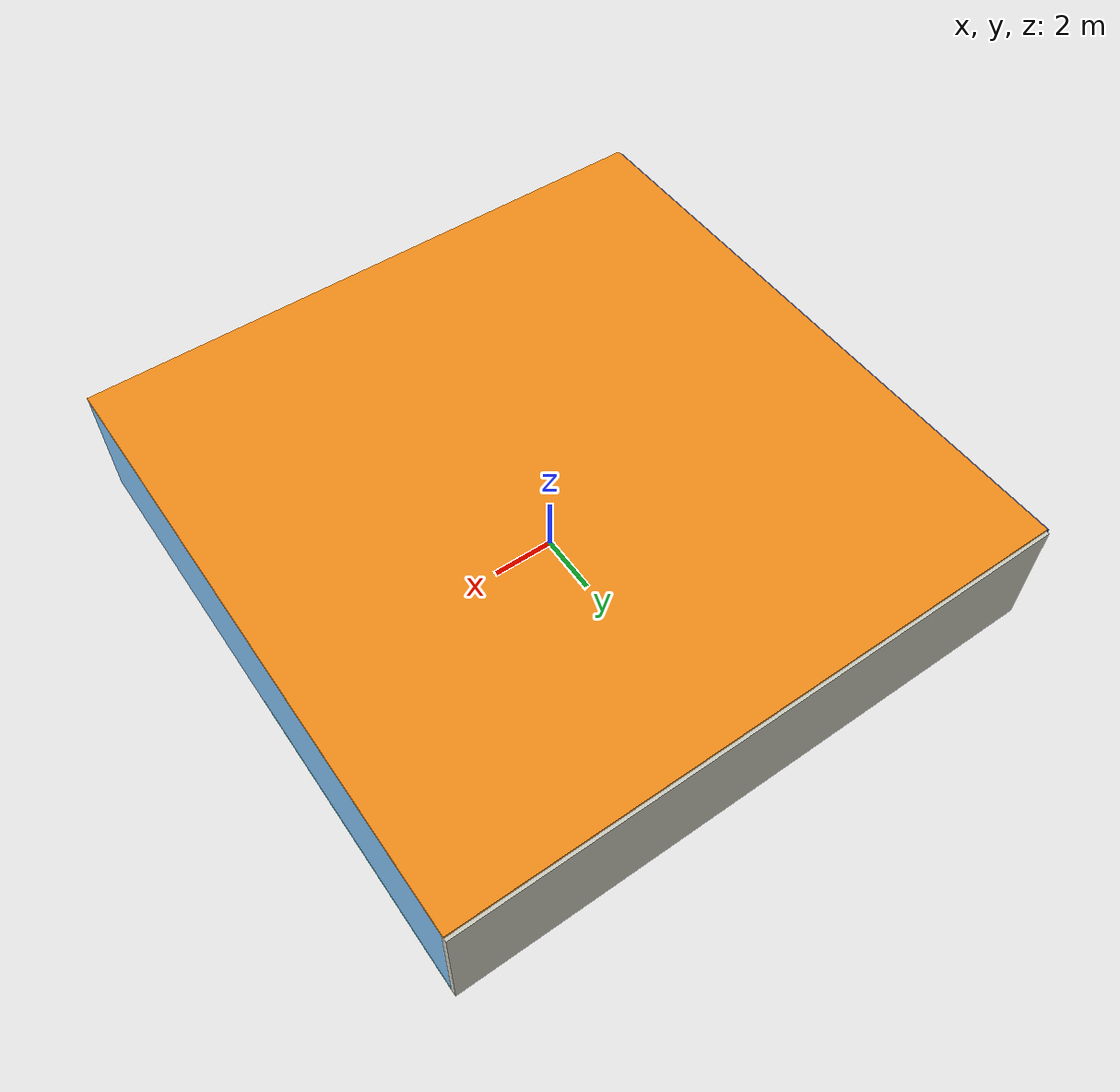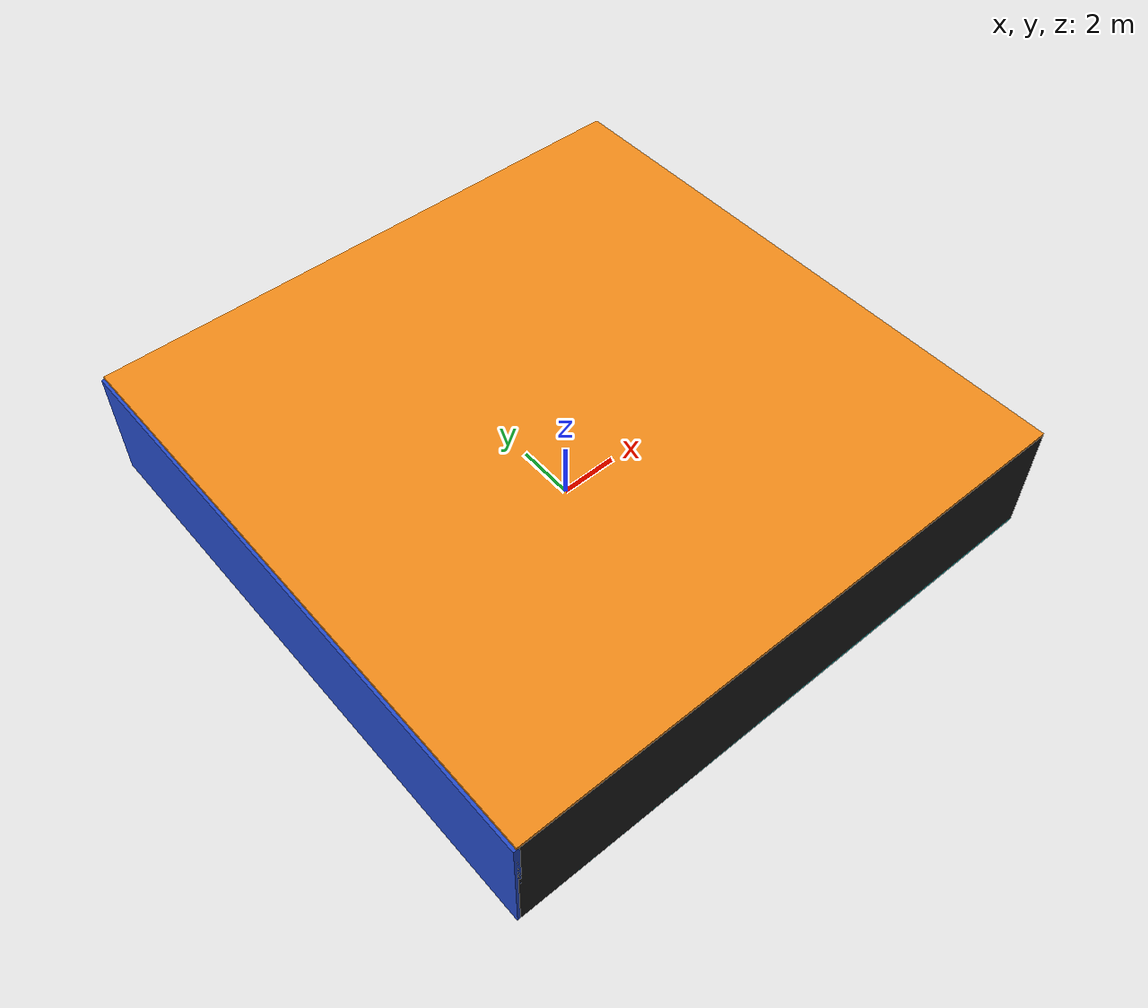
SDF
<sdf version="1.4">
 <world name="default">
  <physics type="ode">
   <max_step_size>0.001</max_step_size>
   <real_time_factor>1</real_time_factor>
   <real_time_update_rate>1000</real_time_update_rate>
   <gravity>0 0 -9.8</gravity>
  </physics>
  <scene><ambient>0.4 0.4 0.4 1</ambient><background>0.7 0.7 0.7 1</background><shadows>1</shadows></scene>
  <model name="Surrounding">
   <static>1</static>
   <link name="Ceiling">
    <collision name="Ceiling_Collision"><geometry><box><size>20 20 0.1</size></box></geometry></collision>
    <visual name="Ceiling_Visual">
     <geometry><box><size>20 20 0.1</size></box></geometry>
     <material>
      <script><uri>file://media/materials/scripts/gazebo.material</uri><name>Gazebo/Orange</name></script>
     </material>
    </visual>
    <pose>0 0 4.05 0 0 0</pose>
   </link>
   <link name="Wall_South">
    <collision name="Wall_South_Collision">
     <geometry><box><size>20 0 4</size></box></geometry>
     <pose>0 0 2 0 -0 0</pose>
    </collision>
    <visual name="Wall_South_Visual">
     <pose>0 0 2 0 -0 0</pose>
     <geometry><box><size>20 0 4</size></box></geometry>
     <material>
      <script><uri>file://media/materials/scripts/gazebo.material</uri><name>Gazebo/Black</name></script>
     </material>
    </visual>
    <velocity_decay><linear>0</linear><angular>0</angular></velocity_decay>
    <pose>0 -10 0 0 -0 0</pose>
   </link>
   <link name="Wall_East">
    <collision name="Wall_21_Collision">
     <geometry><box><size>20 0 4</size></box></geometry>
     <pose>0 0 2 0 -0 0</pose>
    </collision>
    <visual name="Wall_21_Visual">
     <pose>0 0 2 0 -0 0</pose>
     <geometry><box><size>20 0 4</size></box></geometry>
     <material>
      <script><uri>file://media/materials/scripts/gazebo.material</uri><name>Gazebo/SkyBlue</name></script>
     </material>
    </visual>
    <velocity_decay><linear>0</linear><angular>0</angular></velocity_decay>
    <pose>10 0 0 0 -0 1.5708</pose>
   </link>
   <link name="Wall_North">
    <collision name="Wall_22_Collision">
     <geometry><box><size>20 0.2 4</size></box></geometry>
     <pose>0 0 2 0 -0 0</pose>
    </collision>
    <visual name="Wall_22_Visual">
     <pose>0 0 2 0 -0 0</pose>
     <geometry><box><size>20 0.2 4</size></box></geometry>
     <material>
      <script><uri>file://media/materials/scripts/gazebo.material</uri><name>Gazebo/PaintedWall</name></script>
     </material>
    </visual>
    <velocity_decay><linear>0</linear><angular>0</angular></velocity_decay>
    <pose>0 10 0 0 -0 0</pose>
   </link>
   <link name="Wall_West">
    <collision name="Wall_23_Collision">
     <geometry><box><size>20 0.2 4</size></box></geometry>
     <pose>0 0 2 0 -0 0</pose>
    </collision>
    <visual name="Wall_23_Visual">
     <pose>0 0 2 0 -0 0</pose>
     <geometry><box><size>20 0.2 4</size></box></geometry>
     <material>
      <script><uri>file://media/materials/scripts/gazebo.material</uri><name>Gazebo/BlueGlow</name></script>
     </material>
    </visual>
    <velocity_decay><linear>0</linear><angular>0</angular></velocity_decay>
    <pose>-10 0 0 0 0 -1.5708</pose>
   </link>
   <link name="Ground_link">
    <collision name="collision">
     <pose>0 0 .05 0 -0 0</pose>
     <geometry><box><size>20 20 0.1</size></box></geometry>
    </collision>
    <visual name="visual">
     <pose>0 0 .05 0 -0 0</pose>
     <geometry><box><size>20 20 0.1</size></box></geometry>
     <material>
      <script><uri>file://media/materials/scripts/gazebo.material</uri><name>Gazebo/Turquoise</name></script>
     </material>
    </visual>
   </link>
   <static>1</static>
  </model>
  <spherical_coordinates>
   <surface_model>EARTH_WGS84</surface_model>
   <latitude_deg>0</latitude_deg>
   <longitude_deg>0</longitude_deg>
   <elevation>0</elevation>
   <heading_deg>0</heading_deg>
  </spherical_coordinates>
  <light name="lightball_0" type="diffuse">
   <diffuse>0.8 0.8 0.8 1</diffuse>
   <specular>0.2 0.2 0.2 1</specular>
   <attenuation>
    <range>100</range>
    <constant>0.7</constant>
    <linear>0.01</linear>
    <quadratic>0.001</quadratic>
   </attenuation>
   <direction>-0.5 0.1 -0.9</direction>
   <pose>3.94942024705 0.843780424483 2.60389240616 0 0 0</pose>
  </light>
  <light name="lightball_1" type="diffuse">
   <diffuse>0.8 0.8 0.8 1</diffuse>
   <specular>0.2 0.2 0.2 1</specular>
   <attenuation>
    <range>100</range>
    <constant>0.7</constant>
    <linear>0.01</linear>
    <quadratic>0.001</quadratic>
   </attenuation>
   <direction>-0.5 0.1 -0.9</direction>
   <pose>1.18135409617 9.30346712592 3.5653873477 0 0 0</pose>
  </light>
  <light name="lightball_2" type="diffuse">
   <diffuse>0.8 0.8 0.8 1</diffuse>
   <specular>0.2 0.2 0.2 1</specular>
   <attenuation>
    <range>100</range>
    <constant>0.7</constant>
    <linear>0.01</linear>
    <quadratic>0.001</quadratic>
   </attenuation>
   <direction>-0.5 0.1 -0.9</direction>
   <pose>-3.01218851696 2.32836507985 3.10360788097 0 0 0</pose>
  </light>
  <light name="lightball_3" type="diffuse">
   <diffuse>0.8 0.8 0.8 1</diffuse>
   <specular>0.2 0.2 0.2 1</specular>
   <attenuation>
    <range>100</range>
    <constant>0.7</constant>
    <linear>0.01</linear>
    <quadratic>0.001</quadratic>
   </attenuation>
   <direction>-0.5 0.1 -0.9</direction>
   <pose>6.60615883165 4.71778728015 1.680434753 0 0 0</pose>
  </light>
  <light name="lightball_4" type="diffuse">
   <diffuse>0.8 0.8 0.8 1</diffuse>
   <specular>0.2 0.2 0.2 1</specular>
   <attenuation>
    <range>100</range>
    <constant>0.7</constant>
    <linear>0.01</linear>
    <quadratic>0.001</quadratic>
   </attenuation>
   <direction>-0.5 0.1 -0.9</direction>
   <pose>0.640542493779 2.71147340489 2.73707091856 0 0 0</pose>
  </light>
  <include><uri>model://cabinet</uri><pose>-8.32126642383 -4.74574540738 0 0 0 2.74710320343</pose></include>
  <include><uri>model://cabinet</uri><pose>-5.02179907271 2.69657294078 0 0 0 1.36124764233</pose></include>
  <include><uri>model://cabinet</uri><pose>5.11318849312 -4.21869344114 0 0 0 2.9098738949</pose></include>
  <include>
   <uri>model://textured_shapes</uri>
   <pose>4.51197725847 1.60580554051 0 0 0 1.75551253628</pose>
  </include>
  <include>
   <uri>model://robocup_3Dsim_goal</uri>
   <pose>4.58753473394 3.67283684551 0 0 0 0.0117633174683</pose>
  </include>
 </world>
</sdf>

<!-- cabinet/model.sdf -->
<sdf version="1.5">
  <model name="cabinet">
    <static>true</static>
    <link name="cabinet_bottom_plate">
      <inertial>
        <pose>0 0 -1 0 0 0</pose>
        <inertia>
          <ixx>2.050000</ixx>
          <ixy>0</ixy>
          <ixz>0</ixz>
          <iyy>2.050000</iyy>
          <iyz>0</iyz>
          <izz>2.050000</izz>
        </inertia>
        <mass>25.000000</mass>
      </inertial>
      <collision name="cabinet_bottom_plate_geom">
        <pose>0 0 0.010000 0 0 0</pose>
        <geometry>
          <box>
            <size>0.450000 0.450000 0.020000</size>
          </box>
        </geometry>
      </collision>
      <visual name="cabinet_bottom_plate_geom_visual">
        <pose>0 0 0.010000 0 0 0</pose>
        <geometry>
          <box>
            <size>0.450000 0.450000 0.020000</size>
          </box>
        </geometry>
        <material>
          <script>
            <uri>model://media/materials/scripts/gazebo.material</uri>
            <name>Gazebo/Wood</name>
          </script>
        </material>
      </visual>
      <collision name="cabinet_bottom_plate_geom_cabinet_back_plate">
        <pose>0.235000 0 0.510000 0 0 0</pose>
        <geometry>
          <box>
            <size>0.020000 0.450000 1.020000</size>
          </box>
        </geometry>
      </collision>
      <visual name="cabinet_bottom_plate_geom_cabinet_back_plate_visual">
        <pose>0.235000 0 0.510000 0 0 0</pose>
        <geometry>
          <box>
            <size>0.020000 0.450000 1.020000</size>
          </box>
        </geometry>
        <material>
          <script>
            <uri>model://media/materials/scripts/gazebo.material</uri>
            <name>Gazebo/Wood</name>
          </script>
        </material>
      </visual>
      <collision name="cabinet_bottom_plate_geom_cabinet_left_plate">
        <pose>0 0.235000 0.510000 0 0 0</pose>
        <geometry>
          <box>
            <size>0.450000 0.020000 1.020000</size>
          </box>
        </geometry>
      </collision>
      <visual name="cabinet_bottom_plate_geom_cabinet_left_plate_visual">
        <pose>0 0.235000 0.510000 0 0 0</pose>
        <geometry>
          <box>
            <size>0.450000 0.020000 1.020000</size>
          </box>
        </geometry>
        <material>
          <script>
            <uri>model://media/materials/scripts/gazebo.material</uri>
            <name>Gazebo/Wood</name>
          </script>
        </material>
      </visual>
      <collision name="cabinet_bottom_plate_geom_cabinet_middle_plate">
        <pose>0 0 0.510000 0 0 0</pose>
        <geometry>
          <box>
            <size>0.450000 0.450000 0.020000</size>
          </box>
        </geometry>
      </collision>
      <visual name="cabinet_bottom_plate_geom_cabinet_middle_plate_visual">
        <pose>0 0 0.510000 0 0 0</pose>
        <geometry>
          <box>
            <size>0.450000 0.450000 0.020000</size>
          </box>
        </geometry>
        <material>
          <script>
            <uri>model://media/materials/scripts/gazebo.material</uri>
            <name>Gazebo/Wood</name>
          </script>
        </material>
      </visual>
      <collision name="cabinet_bottom_plate_geom_cabinet_right_plate">
        <pose>0 -0.235000 0.510000 0 0 0</pose>
        <geometry>
          <box>
            <size>0.450000 0.020000 1.020000</size>
          </box>
        </geometry>
      </collision>
      <visual name="cabinet_bottom_plate_geom_cabinet_right_plate_visual">
        <pose>0 -0.235000 0.510000 0 0 0</pose>
        <geometry>
          <box>
            <size>0.450000 0.020000 1.020000</size>
          </box>
        </geometry>
        <material>
          <script>
            <uri>model://media/materials/scripts/gazebo.material</uri>
            <name>Gazebo/Wood</name>
          </script>
        </material>
      </visual>
      <collision name="cabinet_bottom_plate_geom_cabinet_top_plate">
        <pose>0 0 1.010000 0 0 0</pose>
        <geometry>
          <box>
            <size>0.450000 0.450000 0.020000</size>
          </box>
        </geometry>
      </collision>
      <visual name="cabinet_bottom_plate_geom_cabinet_top_plate_visual">
        <pose>0 0 1.010000 0 0 0</pose>
        <geometry>
          <box>
            <size>0.450000 0.450000 0.020000</size>
          </box>
        </geometry>
        <material>
          <script>
            <uri>model://media/materials/scripts/gazebo.material</uri>
            <name>Gazebo/Wood</name>
          </script>
        </material>
      </visual>
    </link>
  </model>
</sdf>

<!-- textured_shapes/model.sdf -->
<sdf version="1.6">
  <model name="textured_shapes">
    <pose>0 0 0.5 0 0 0</pose>
    <link name="box">
      <pose>0 -1.5 0 0 0 0</pose>
      <collision name="collision">
        <geometry>
          <box>
            <size>1 1 1</size>
          </box>
        </geometry>
      </collision>
      <visual name="visual">
        <geometry>
          <box>
            <size>1 1 1</size>
          </box>
        </geometry>
        <material>
          <script>
            <uri>model://../model_source/models/textured_shapes/materials/scripts</uri>
            <uri>model://../model_source/models/textured_shapes/materials/textures</uri>
            <name>TexturedShape/Squares</name>
          </script>
        </material>
      </visual>
    </link>
    <link name="sphere">
      <collision name="collision">
        <geometry>
          <sphere>
            <radius>0.5</radius>
          </sphere>
        </geometry>
      </collision>
      <visual name="visual">
        <geometry>
          <sphere>
            <radius>0.5</radius>
          </sphere>
        </geometry>
        <material>
          <script>
            <uri>model://../model_source/models/textured_shapes/materials/scripts</uri>
            <uri>model://../model_source/models/textured_shapes/materials/textures</uri>
            <name>TexturedShape/Squares</name>
          </script>
        </material>
      </visual>
    </link>
    <link name="cylinder">
      <pose>0 1.5 0 0 0 0</pose>
      <collision name="collision">
        <geometry>
          <cylinder>
            <radius>0.5</radius>
            <length>1</length>
          </cylinder>
        </geometry>
      </collision>
      <visual name="visual">
        <geometry>
          <cylinder>
            <radius>0.5</radius>
            <length>1</length>
          </cylinder>
        </geometry>
        <material>
          <script>
            <uri>model://../model_source/models/textured_shapes/materials/scripts</uri>
            <uri>model://../model_source/models/textured_shapes/materials/textures</uri>
            <name>TexturedShape/Squares</name>
          </script>
        </material>
      </visual>
    </link>
  </model>
</sdf>

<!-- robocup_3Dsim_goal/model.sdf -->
<sdf version="1.5">
  <model name="robocup_3d_goal">
    <static>true</static>
    <link name="left_post">
      <pose>0 1.05 0.45 0 0 0</pose>
      <collision name="collision">
        <geometry>
          <cylinder>
            <radius>0.05</radius>
            <length>0.9</length>
          </cylinder>
        </geometry>
      </collision>
      <visual name="visual">
        <geometry>
          <cylinder>
            <radius>0.05</radius>
            <length>0.9</length>
          </cylinder>
        </geometry>
        <material>
          <script>
            <uri>file://media/materials/scripts/gazebo.material</uri>
            <name>Gazebo/ZincYellow</name>
          </script>
        </material>
      </visual>
    </link>
    <link name="left_support_horiz_lower">
      <pose>0.30 1.05 0.01 0 0 0</pose>
      <collision name="collision">
        <geometry>
          <box>
            <size>0.50 0.02 0.02</size>
          </box>
        </geometry>
      </collision>
      <visual name="visual">
        <geometry>
          <box>
            <size>0.50 0.02 0.02</size>
          </box>
        </geometry>
        <material>
          <script>
            <uri>file://media/materials/scripts/gazebo.material</uri>
            <name>Gazebo/White</name>
          </script>
        </material>
      </visual>
    </link>
    <link name="left_support_horiz_upper">
      <pose>0.30 1.05 0.79 0 0 0</pose>
      <collision name="collision">
        <geometry>
          <box>
            <size>0.50 0.02 0.02</size>
          </box>
        </geometry>
      </collision>
      <visual name="visual">
        <geometry>
          <box>
            <size>0.50 0.02 0.02</size>
          </box>
        </geometry>
        <material>
          <script>
            <uri>file://media/materials/scripts/gazebo.material</uri>
            <name>Gazebo/White</name>
          </script>
        </material>
      </visual>
    </link>
    <link name="left_support_vertical">
      <pose>0.56 1.05 0.4 0 1.5708 0</pose>
      <collision name="collision">
        <geometry>
          <box>
            <size>0.80 0.02 0.02</size>
          </box>
        </geometry>
      </collision>
      <visual name="visual">
        <geometry>
          <box>
            <size>0.80 0.02 0.02</size>
          </box>
        </geometry>
        <material>
          <script>
            <uri>file://media/materials/scripts/gazebo.material</uri>
            <name>Gazebo/White</name>
          </script>
        </material>
      </visual>
    </link>
    <link name="right_support_horiz_lower">
      <pose>0.30 -1.05 0.01 0 0 0</pose>
      <collision name="collision">
        <geometry>
          <box>
            <size>0.50 0.02 0.02</size>
          </box>
        </geometry>
      </collision>
      <visual name="visual">
        <geometry>
          <box>
            <size>0.50 0.02 0.02</size>
          </box>
        </geometry>
        <material>
          <script>
            <uri>file://media/materials/scripts/gazebo.material</uri>
            <name>Gazebo/White</name>
          </script>
        </material>
      </visual>
    </link>
    <link name="right_support_horiz_upper">
      <pose>0.30 -1.05 0.79 0 0 0</pose>
      <collision name="collision">
        <geometry>
          <box>
            <size>0.50 0.02 0.02</size>
          </box>
        </geometry>
      </collision>
      <visual name="visual">
        <geometry>
          <box>
            <size>0.50 0.02 0.02</size>
          </box>
        </geometry>
        <material>
          <script>
            <uri>file://media/materials/scripts/gazebo.material</uri>
            <name>Gazebo/White</name>
          </script>
        </material>
      </visual>
    </link>
    <link name="right_support_vertical">
      <pose>0.56 -1.05 0.4 0 1.5708 0</pose>
      <collision name="collision">
        <geometry>
          <box>
            <size>0.80 0.02 0.02</size>
          </box>
        </geometry>
      </collision>
      <visual name="visual">
        <geometry>
          <box>
            <size>0.80 0.02 0.02</size>
          </box>
        </geometry>
        <material>
          <script>
            <uri>file://media/materials/scripts/gazebo.material</uri>
            <name>Gazebo/White</name>
          </script>
        </material>
      </visual>
    </link>
    <link name="center_support_horiz_lower">
      <pose>0.56 0 0.01 0 1.5708 0</pose>
      <collision name="collision">
        <geometry>
          <box>
            <size>0.02 2.08 0.02</size>
          </box>
        </geometry>
      </collision>
      <visual name="visual">
        <geometry>
          <box>
            <size>0.02 2.08 0.02</size>
          </box>
        </geometry>
        <material>
          <script>
            <uri>file://media/materials/scripts/gazebo.material</uri>
            <name>Gazebo/White</name>
          </script>
        </material>
      </visual>
    </link>
    <link name="center_support_horiz_upper">
      <pose>0.56 0 0.79 0 1.5708 0</pose>
      <collision name="collision">
        <geometry>
          <box>
            <size>0.02 2.08 0.02</size>
          </box>
        </geometry>
      </collision>
      <visual name="visual">
        <geometry>
          <box>
            <size>0.02 2.08 0.02</size>
          </box>
        </geometry>
        <material>
          <script>
            <uri>file://media/materials/scripts/gazebo.material</uri>
            <name>Gazebo/White</name>
          </script>
        </material>
      </visual>
    </link>
    <link name="right_post">
      <pose>0 -1.05 0.45 0 0 0</pose>
      <collision name="collision">
        <geometry>
          <cylinder>
            <radius>0.05</radius>
            <length>0.9</length>
          </cylinder>
        </geometry>
      </collision>
      <visual name="visual">
        <geometry>
          <cylinder>
            <radius>0.05</radius>
            <length>0.9</length>
          </cylinder>
        </geometry>
        <material>
          <script>
            <uri>file://media/materials/scripts/gazebo.material</uri>
            <name>Gazebo/ZincYellow</name>
          </script>
        </material>
      </visual>
    </link>
    <link name="crossbar">
      <pose>0 0 0.85 1.57 1.57 0</pose>
      <collision name="collision">
        <geometry>
          <cylinder>
            <radius>0.05</radius>
            <length>2.0</length>
          </cylinder>
        </geometry>
      </collision>
      <visual name="visual">
        <geometry>
          <cylinder>
            <radius>0.05</radius>
            <length>2.0</length>
          </cylinder>
        </geometry>
        <material>
          <script>
            <uri>file://media/materials/scripts/gazebo.material</uri>
            <name>Gazebo/ZincYellow</name>
          </script>
        </material>
      </visual>
    </link>
    <link name="center_net">
      <pose>0.56 0 0.40 0 0 0</pose>
      <collision name="collision">
        <geometry>
          <box>
            <size>0.01 2.1 0.80</size>
          </box>
        </geometry>
      </collision>
      <visual name="visual">
        <geometry>
          <box>
            <size>0.01 2.1 0.80</size>
          </box>
        </geometry>
        <material>
          <script>
            <uri>model://../model_source/models/robocup09_spl_field/materials/scripts/</uri>
            <uri>model://../model_source/models/robocup09_spl_field/materials/textures/</uri>
            <name>RoboCup/Net</name>
          </script>
        </material>
      </visual>
    </link>
    <link name="left_net">
      <pose>0.30 1.05 0.40 0 0 0</pose>
      <collision name="collision">
        <geometry>
          <box>
            <size>0.50 0.01 0.76</size>
          </box>
        </geometry>
      </collision>
      <visual name="visual">
        <geometry>
          <box>
            <size>0.50 0.01 0.76</size>
          </box>
        </geometry>
        <material>
          <script>
            <uri>model://../model_source/models/robocup09_spl_field/materials/scripts/</uri>
            <uri>model://../model_source/models/robocup09_spl_field/materials/textures/</uri>
            <name>RoboCup/Net</name>
          </script>
        </material>
      </visual>
    </link>
    <link name="right_net">
      <pose>0.30 -1.05 0.40 0 0 0</pose>
      <collision name="collision">
        <geometry>
          <box>
            <size>0.50 0.01 0.76</size>
          </box>
        </geometry>
      </collision>
      <visual name="visual">
        <geometry>
          <box>
            <size>0.50 0.01 0.76</size>
          </box>
        </geometry>
        <material>
          <script>
            <uri>model://../model_source/models/robocup09_spl_field/materials/scripts/</uri>
            <uri>model://../model_source/models/robocup09_spl_field/materials/textures/</uri>
            <name>RoboCup/Net</name>
          </script>
        </material>
      </visual>
    </link>
  </model>
</sdf>
